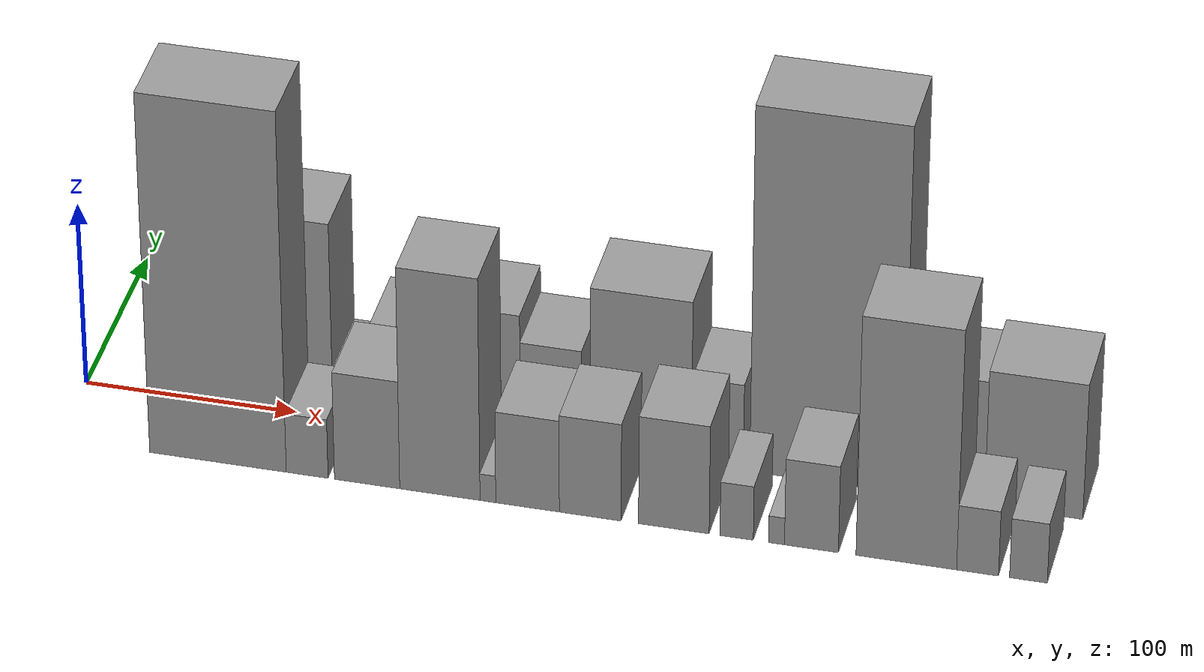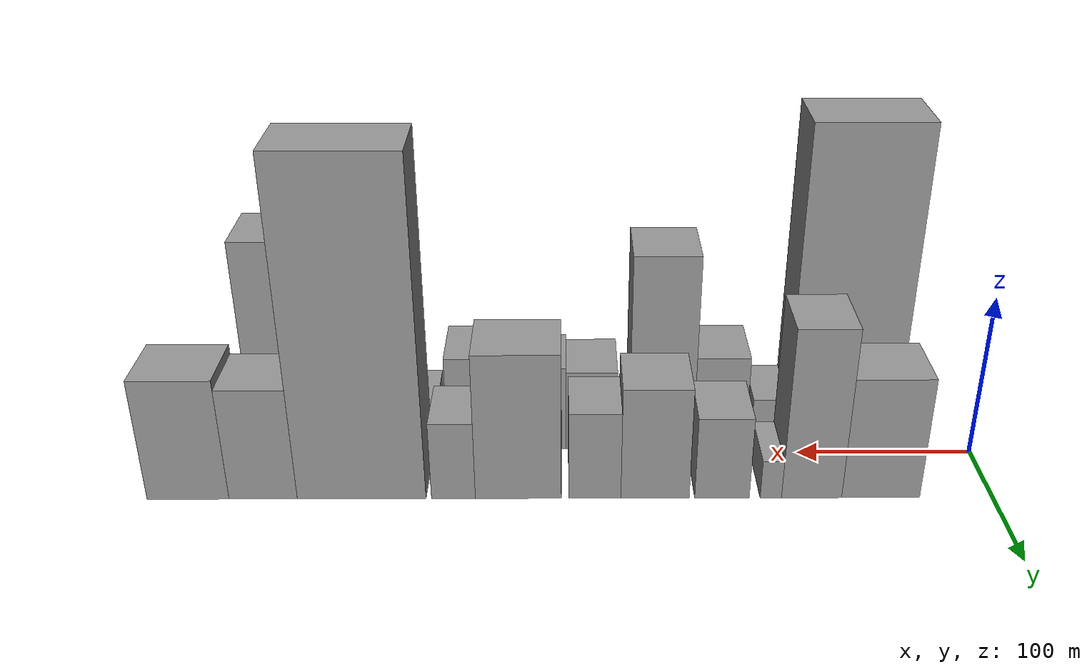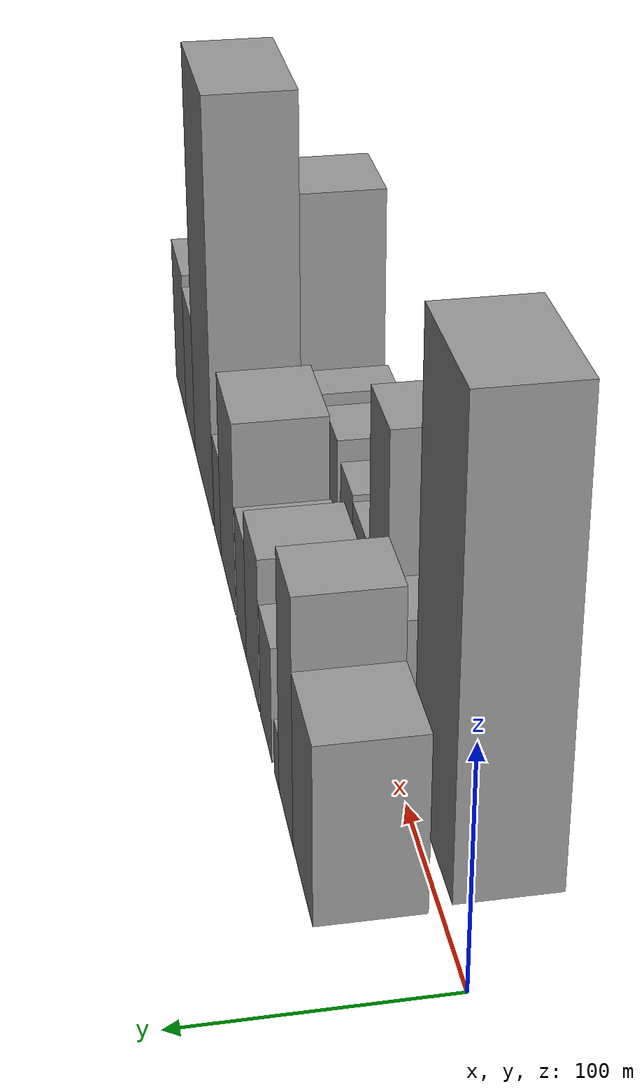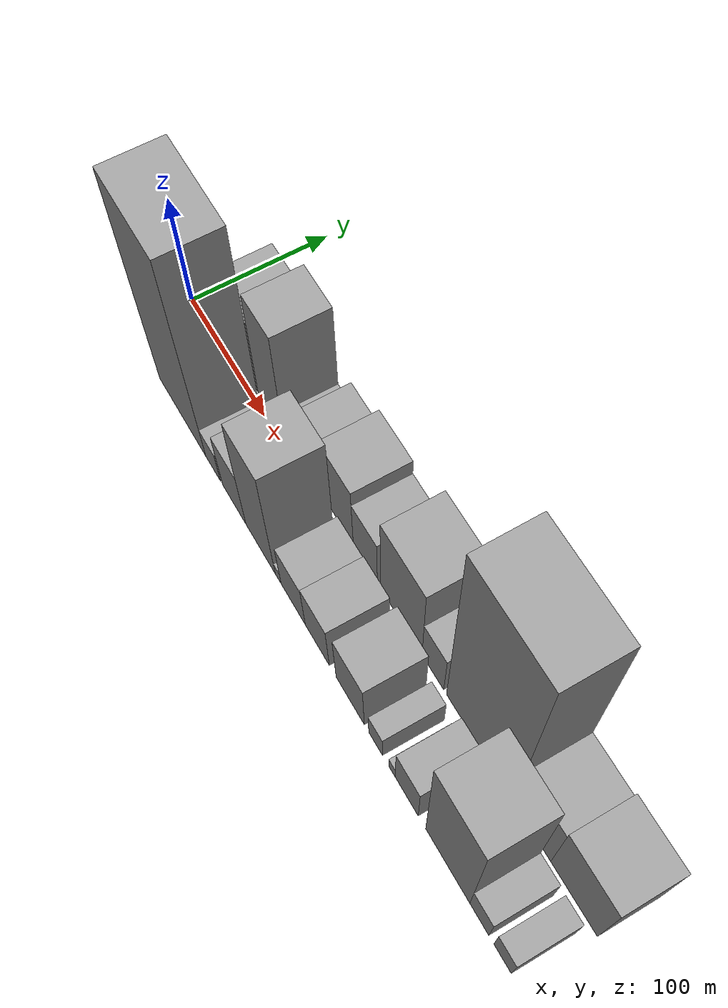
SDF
<sdf version="1.6">
 <world name="default">
  <scene>
   <sky><clouds><speed>12</speed></clouds></sky>
   <ambient>0.4 0.4 0.4 1</ambient>
   <background>0.7 0.7 0.7 1</background>
   <shadows>1</shadows>
  </scene>
  <gravity>0 0 -9.8066</gravity>
  <magnetic_field>6e-06 2.3e-05 -4.2e-05</magnetic_field>
  <physics default="0" name="default_physics" type="ode">
   <ode>
    <solver>
     <type>quick</type>
     <iters>10</iters>
     <sor>1.0</sor>
     <use_dynamic_moi_rescaling>0</use_dynamic_moi_rescaling>
    </solver>
    <constraints>
     <cfm>0</cfm>
     <erp>0.2</erp>
     <contact_max_correcting_vel>100</contact_max_correcting_vel>
     <contact_surface_layer>0.001</contact_surface_layer>
    </constraints>
   </ode>
   <max_step_size>0.004</max_step_size>
   <real_time_factor>1</real_time_factor>
   <real_time_update_rate>250</real_time_update_rate>
  </physics>
  <light name="sun" type="directional">
   <pose>0 0 10 0 0 0</pose>
   <diffuse>0.8 0.8 0.8 1</diffuse>
   <specular>0.2 0.2 0.2 1</specular>
   <attenuation>
    <range>1000</range>
    <constant>0.9</constant>
    <linear>0.01</linear>
    <quadratic>0.001</quadratic>
   </attenuation>
   <direction>-0.5 0.1 -0.9</direction>
  </light>
  <model name="building_1">
   <static>1</static>
   <pose>61.4290 24.5000 0 0.000000 0.000000 1.570796</pose>
   <link name="link">
    <pose>0 0 37.50 0 0 0</pose>
    <collision name="collision"><geometry><box><size>40.0000 42.8580 75.0000</size></box></geometry></collision>
    <visual name="visual">
     <cast_shadows>0</cast_shadows>
     <geometry><box><size>40.0000 42.8580 75.0000</size></box></geometry>
     <material>
      <script>
       <uri>model://grey_wall/materials/scripts</uri>
       <uri>model://grey_wall/materials/textures</uri>
       <name>vrc/grey_wall</name>
      </script>
     </material>
    </visual>
   </link>
  </model>
  <model name="building_2">
   <static>1</static>
   <pose>99.4082 24.5000 0 0.000000 0.000000 1.570796</pose>
   <link name="link">
    <pose>0 0 52.50 0 0 0</pose>
    <collision name="collision"><geometry><box><size>40.0000 33.1004 105.0000</size></box></geometry></collision>
    <visual name="visual">
     <cast_shadows>0</cast_shadows>
     <geometry><box><size>40.0000 33.1004 105.0000</size></box></geometry>
     <material>
      <script>
       <uri>model://grey_wall/materials/scripts</uri>
       <uri>model://grey_wall/materials/textures</uri>
       <name>vrc/grey_wall</name>
      </script>
     </material>
    </visual>
   </link>
  </model>
  <model name="building_3">
   <static>1</static>
   <pose>121.8091 24.5000 0 0.000000 0.000000 1.570796</pose>
   <link name="link">
    <pose>0 0 12.00 0 0 0</pose>
    <collision name="collision"><geometry><box><size>40.0000 11.7015 24.0000</size></box></geometry></collision>
    <visual name="visual">
     <cast_shadows>0</cast_shadows>
     <geometry><box><size>40.0000 11.7015 24.0000</size></box></geometry>
     <material>
      <script>
       <uri>model://grey_wall/materials/scripts</uri>
       <uri>model://grey_wall/materials/textures</uri>
       <name>vrc/grey_wall</name>
      </script>
     </material>
    </visual>
   </link>
  </model>
  <model name="building_4">
   <static>1</static>
   <pose>148.6556 24.5000 0 0.000000 0.000000 1.570796</pose>
   <link name="link">
    <pose>0 0 25.50 0 0 0</pose>
    <collision name="collision"><geometry><box><size>40.0000 29.9914 51.0000</size></box></geometry></collision>
    <visual name="visual">
     <cast_shadows>0</cast_shadows>
     <geometry><box><size>40.0000 29.9914 51.0000</size></box></geometry>
     <material>
      <script>
       <uri>model://grey_wall/materials/scripts</uri>
       <uri>model://grey_wall/materials/textures</uri>
       <name>vrc/grey_wall</name>
      </script>
     </material>
    </visual>
   </link>
  </model>
  <model name="building_5">
   <static>1</static>
   <pose>185.4385 24.5000 0 0.000000 0.000000 1.570796</pose>
   <link name="link">
    <pose>0 0 34.50 0 0 0</pose>
    <collision name="collision"><geometry><box><size>40.0000 37.5743 69.0000</size></box></geometry></collision>
    <visual name="visual">
     <cast_shadows>0</cast_shadows>
     <geometry><box><size>40.0000 37.5743 69.0000</size></box></geometry>
     <material>
      <script>
       <uri>model://grey_wall/materials/scripts</uri>
       <uri>model://grey_wall/materials/textures</uri>
       <name>vrc/grey_wall</name>
      </script>
     </material>
    </visual>
   </link>
  </model>
  <model name="building_6">
   <static>1</static>
   <pose>218.5571 24.5000 0 0.000000 0.000000 1.570796</pose>
   <link name="link">
    <pose>0 0 27.00 0 0 0</pose>
    <collision name="collision"><geometry><box><size>40.0000 28.6629 54.0000</size></box></geometry></collision>
    <visual name="visual">
     <cast_shadows>0</cast_shadows>
     <geometry><box><size>40.0000 28.6629 54.0000</size></box></geometry>
     <material>
      <script>
       <uri>model://grey_wall/materials/scripts</uri>
       <uri>model://grey_wall/materials/textures</uri>
       <name>vrc/grey_wall</name>
      </script>
     </material>
    </visual>
   </link>
  </model>
  <model name="building_7">
   <static>1</static>
   <pose>260.4866 24.5000 0 0.000000 0.000000 1.570796</pose>
   <link name="link">
    <pose>0 0 45.00 0 0 0</pose>
    <collision name="collision"><geometry><box><size>40.0000 47.1961 90.0000</size></box></geometry></collision>
    <visual name="visual">
     <cast_shadows>0</cast_shadows>
     <geometry><box><size>40.0000 47.1961 90.0000</size></box></geometry>
     <material>
      <script>
       <uri>model://grey_wall/materials/scripts</uri>
       <uri>model://grey_wall/materials/textures</uri>
       <name>vrc/grey_wall</name>
      </script>
     </material>
    </visual>
   </link>
  </model>
  <model name="building_8">
   <static>1</static>
   <pose>296.1059 24.5000 0 0.000000 0.000000 1.570796</pose>
   <link name="link">
    <pose>0 0 24.00 0 0 0</pose>
    <collision name="collision"><geometry><box><size>40.0000 24.0427 48.0000</size></box></geometry></collision>
    <visual name="visual">
     <cast_shadows>0</cast_shadows>
     <geometry><box><size>40.0000 24.0427 48.0000</size></box></geometry>
     <material>
      <script>
       <uri>model://grey_wall/materials/scripts</uri>
       <uri>model://grey_wall/materials/textures</uri>
       <name>vrc/grey_wall</name>
      </script>
     </material>
    </visual>
   </link>
  </model>
  <model name="building_9">
   <static>1</static>
   <pose>346.4396 24.5000 0 0.000000 0.000000 1.570796</pose>
   <link name="link">
    <pose>0 0 100.50 0 0 0</pose>
    <collision name="collision"><geometry><box><size>40.0000 70.6246 201.0000</size></box></geometry></collision>
    <visual name="visual">
     <cast_shadows>0</cast_shadows>
     <geometry><box><size>40.0000 70.6246 201.0000</size></box></geometry>
     <material>
      <script>
       <uri>model://grey_wall/materials/scripts</uri>
       <uri>model://grey_wall/materials/textures</uri>
       <name>vrc/grey_wall</name>
      </script>
     </material>
    </visual>
   </link>
  </model>
  <model name="building_10">
   <static>1</static>
   <pose>400.4608 24.5000 0 0.000000 0.000000 1.570796</pose>
   <link name="link">
    <pose>0 0 34.50 0 0 0</pose>
    <collision name="collision"><geometry><box><size>40.0000 37.4178 69.0000</size></box></geometry></collision>
    <visual name="visual">
     <cast_shadows>0</cast_shadows>
     <geometry><box><size>40.0000 37.4178 69.0000</size></box></geometry>
     <material>
      <script>
       <uri>model://grey_wall/materials/scripts</uri>
       <uri>model://grey_wall/materials/textures</uri>
       <name>vrc/grey_wall</name>
      </script>
     </material>
    </visual>
   </link>
  </model>
  <model name="building_11">
   <static>1</static>
   <pose>441.6127 24.5000 0 0.000000 0.000000 1.570796</pose>
   <link name="link">
    <pose>0 0 37.50 0 0 0</pose>
    <collision name="collision"><geometry><box><size>40.0000 44.8860 75.0000</size></box></geometry></collision>
    <visual name="visual">
     <cast_shadows>0</cast_shadows>
     <geometry><box><size>40.0000 44.8860 75.0000</size></box></geometry>
     <material>
      <script>
       <uri>model://grey_wall/materials/scripts</uri>
       <uri>model://grey_wall/materials/textures</uri>
       <name>vrc/grey_wall</name>
      </script>
     </material>
    </visual>
   </link>
  </model>
  <model name="building_12">
   <static>1</static>
   <pose>75.1191 -24.5000 0 0.000000 0.000000 1.570796</pose>
   <link name="link">
    <pose>0 0 99.00 0 0 0</pose>
    <collision name="collision"><geometry><box><size>40.0000 64.2383 198.0000</size></box></geometry></collision>
    <visual name="visual">
     <cast_shadows>0</cast_shadows>
     <geometry><box><size>40.0000 64.2383 198.0000</size></box></geometry>
     <material>
      <script>
       <uri>model://grey_wall/materials/scripts</uri>
       <uri>model://grey_wall/materials/textures</uri>
       <name>vrc/grey_wall</name>
      </script>
     </material>
    </visual>
   </link>
  </model>
  <model name="building_13">
   <static>1</static>
   <pose>117.0187 -24.5000 0 0.000000 0.000000 1.570796</pose>
   <link name="link">
    <pose>0 0 16.50 0 0 0</pose>
    <collision name="collision"><geometry><box><size>40.0000 19.5610 33.0000</size></box></geometry></collision>
    <visual name="visual">
     <cast_shadows>0</cast_shadows>
     <geometry><box><size>40.0000 19.5610 33.0000</size></box></geometry>
     <material>
      <script>
       <uri>model://grey_wall/materials/scripts</uri>
       <uri>model://grey_wall/materials/textures</uri>
       <name>vrc/grey_wall</name>
      </script>
     </material>
    </visual>
   </link>
  </model>
  <model name="building_14">
   <static>1</static>
   <pose>145.0235 -24.5000 0 0.000000 0.000000 1.570796</pose>
   <link name="link">
    <pose>0 0 30.00 0 0 0</pose>
    <collision name="collision"><geometry><box><size>40.0000 30.4486 60.0000</size></box></geometry></collision>
    <visual name="visual">
     <cast_shadows>0</cast_shadows>
     <geometry><box><size>40.0000 30.4486 60.0000</size></box></geometry>
     <material>
      <script>
       <uri>model://grey_wall/materials/scripts</uri>
       <uri>model://grey_wall/materials/textures</uri>
       <name>vrc/grey_wall</name>
      </script>
     </material>
    </visual>
   </link>
  </model>
  <model name="building_15">
   <static>1</static>
   <pose>178.9129 -24.5000 0 0.000000 0.000000 1.570796</pose>
   <link name="link">
    <pose>0 0 61.50 0 0 0</pose>
    <collision name="collision"><geometry><box><size>40.0000 37.3303 123.0000</size></box></geometry></collision>
    <visual name="visual">
     <cast_shadows>0</cast_shadows>
     <geometry><box><size>40.0000 37.3303 123.0000</size></box></geometry>
     <material>
      <script>
       <uri>model://grey_wall/materials/scripts</uri>
       <uri>model://grey_wall/materials/textures</uri>
       <name>vrc/grey_wall</name>
      </script>
     </material>
    </visual>
   </link>
  </model>
  <model name="building_16">
   <static>1</static>
   <pose>201.2308 -24.5000 0 0.000000 0.000000 1.570796</pose>
   <link name="link">
    <pose>0 0 7.50 0 0 0</pose>
    <collision name="collision"><geometry><box><size>40.0000 7.3055 15.0000</size></box></geometry></collision>
    <visual name="visual">
     <cast_shadows>0</cast_shadows>
     <geometry><box><size>40.0000 7.3055 15.0000</size></box></geometry>
     <material>
      <script>
       <uri>model://grey_wall/materials/scripts</uri>
       <uri>model://grey_wall/materials/textures</uri>
       <name>vrc/grey_wall</name>
      </script>
     </material>
    </visual>
   </link>
  </model>
  <model name="building_17">
   <static>1</static>
   <pose>219.5915 -24.5000 0 0.000000 0.000000 1.570796</pose>
   <link name="link">
    <pose>0 0 25.50 0 0 0</pose>
    <collision name="collision"><geometry><box><size>40.0000 29.4157 51.0000</size></box></geometry></collision>
    <visual name="visual">
     <cast_shadows>0</cast_shadows>
     <geometry><box><size>40.0000 29.4157 51.0000</size></box></geometry>
     <material>
      <script>
       <uri>model://grey_wall/materials/scripts</uri>
       <uri>model://grey_wall/materials/textures</uri>
       <name>vrc/grey_wall</name>
      </script>
     </material>
    </visual>
   </link>
  </model>
  <model name="building_18">
   <static>1</static>
   <pose>248.5822 -24.5000 0 0.000000 0.000000 1.570796</pose>
   <link name="link">
    <pose>0 0 27.00 0 0 0</pose>
    <collision name="collision"><geometry><box><size>40.0000 28.5657 54.0000</size></box></geometry></collision>
    <visual name="visual">
     <cast_shadows>0</cast_shadows>
     <geometry><box><size>40.0000 28.5657 54.0000</size></box></geometry>
     <material>
      <script>
       <uri>model://grey_wall/materials/scripts</uri>
       <uri>model://grey_wall/materials/textures</uri>
       <name>vrc/grey_wall</name>
      </script>
     </material>
    </visual>
   </link>
  </model>
  <model name="building_19">
   <static>1</static>
   <pose>287.0591 -24.5000 0 0.000000 0.000000 1.570796</pose>
   <link name="link">
    <pose>0 0 30.00 0 0 0</pose>
    <collision name="collision"><geometry><box><size>40.0000 32.3880 60.0000</size></box></geometry></collision>
    <visual name="visual">
     <cast_shadows>0</cast_shadows>
     <geometry><box><size>40.0000 32.3880 60.0000</size></box></geometry>
     <material>
      <script>
       <uri>model://grey_wall/materials/scripts</uri>
       <uri>model://grey_wall/materials/textures</uri>
       <name>vrc/grey_wall</name>
      </script>
     </material>
    </visual>
   </link>
  </model>
  <model name="building_20">
   <static>1</static>
   <pose>315.8708 -24.5000 0 0.000000 0.000000 1.570796</pose>
   <link name="link">
    <pose>0 0 15.00 0 0 0</pose>
    <collision name="collision"><geometry><box><size>40.0000 15.2355 30.0000</size></box></geometry></collision>
    <visual name="visual">
     <cast_shadows>0</cast_shadows>
     <geometry><box><size>40.0000 15.2355 30.0000</size></box></geometry>
     <material>
      <script>
       <uri>model://grey_wall/materials/scripts</uri>
       <uri>model://grey_wall/materials/textures</uri>
       <name>vrc/grey_wall</name>
      </script>
     </material>
    </visual>
   </link>
  </model>
  <model name="building_21">
   <static>1</static>
   <pose>334.1088 -24.5000 0 0.000000 0.000000 1.570796</pose>
   <link name="link">
    <pose>0 0 7.50 0 0 0</pose>
    <collision name="collision"><geometry><box><size>40.0000 7.2406 15.0000</size></box></geometry></collision>
    <visual name="visual">
     <cast_shadows>0</cast_shadows>
     <geometry><box><size>40.0000 7.2406 15.0000</size></box></geometry>
     <material>
      <script>
       <uri>model://grey_wall/materials/scripts</uri>
       <uri>model://grey_wall/materials/textures</uri>
       <name>vrc/grey_wall</name>
      </script>
     </material>
    </visual>
   </link>
  </model>
  <model name="building_22">
   <static>1</static>
   <pose>350.0296 -24.5000 0 0.000000 0.000000 1.570796</pose>
   <link name="link">
    <pose>0 0 24.00 0 0 0</pose>
    <collision name="collision"><geometry><box><size>40.0000 24.6010 48.0000</size></box></geometry></collision>
    <visual name="visual">
     <cast_shadows>0</cast_shadows>
     <geometry><box><size>40.0000 24.6010 48.0000</size></box></geometry>
     <material>
      <script>
       <uri>model://grey_wall/materials/scripts</uri>
       <uri>model://grey_wall/materials/textures</uri>
       <name>vrc/grey_wall</name>
      </script>
     </material>
    </visual>
   </link>
  </model>
  <model name="building_23">
   <static>1</static>
   <pose>393.1494 -24.5000 0 0.000000 0.000000 1.570796</pose>
   <link name="link">
    <pose>0 0 66.00 0 0 0</pose>
    <collision name="collision"><geometry><box><size>40.0000 45.6386 132.0000</size></box></geometry></collision>
    <visual name="visual">
     <cast_shadows>0</cast_shadows>
     <geometry><box><size>40.0000 45.6386 132.0000</size></box></geometry>
     <material>
      <script>
       <uri>model://grey_wall/materials/scripts</uri>
       <uri>model://grey_wall/materials/textures</uri>
       <name>vrc/grey_wall</name>
      </script>
     </material>
    </visual>
   </link>
  </model>
  <model name="building_24">
   <static>1</static>
   <pose>425.4387 -24.5000 0 0.000000 0.000000 1.570796</pose>
   <link name="link">
    <pose>0 0 18.00 0 0 0</pose>
    <collision name="collision"><geometry><box><size>40.0000 18.9399 36.0000</size></box></geometry></collision>
    <visual name="visual">
     <cast_shadows>0</cast_shadows>
     <geometry><box><size>40.0000 18.9399 36.0000</size></box></geometry>
     <material>
      <script>
       <uri>model://grey_wall/materials/scripts</uri>
       <uri>model://grey_wall/materials/textures</uri>
       <name>vrc/grey_wall</name>
      </script>
     </material>
    </visual>
   </link>
  </model>
  <model name="building_25">
   <static>1</static>
   <pose>448.4150 -24.5000 0 0.000000 0.000000 1.570796</pose>
   <link name="link">
    <pose>0 0 16.50 0 0 0</pose>
    <collision name="collision"><geometry><box><size>40.0000 17.0128 33.0000</size></box></geometry></collision>
    <visual name="visual">
     <cast_shadows>0</cast_shadows>
     <geometry><box><size>40.0000 17.0128 33.0000</size></box></geometry>
     <material>
      <script>
       <uri>model://grey_wall/materials/scripts</uri>
       <uri>model://grey_wall/materials/textures</uri>
       <name>vrc/grey_wall</name>
      </script>
     </material>
    </visual>
   </link>
  </model>
 </world>
</sdf>
